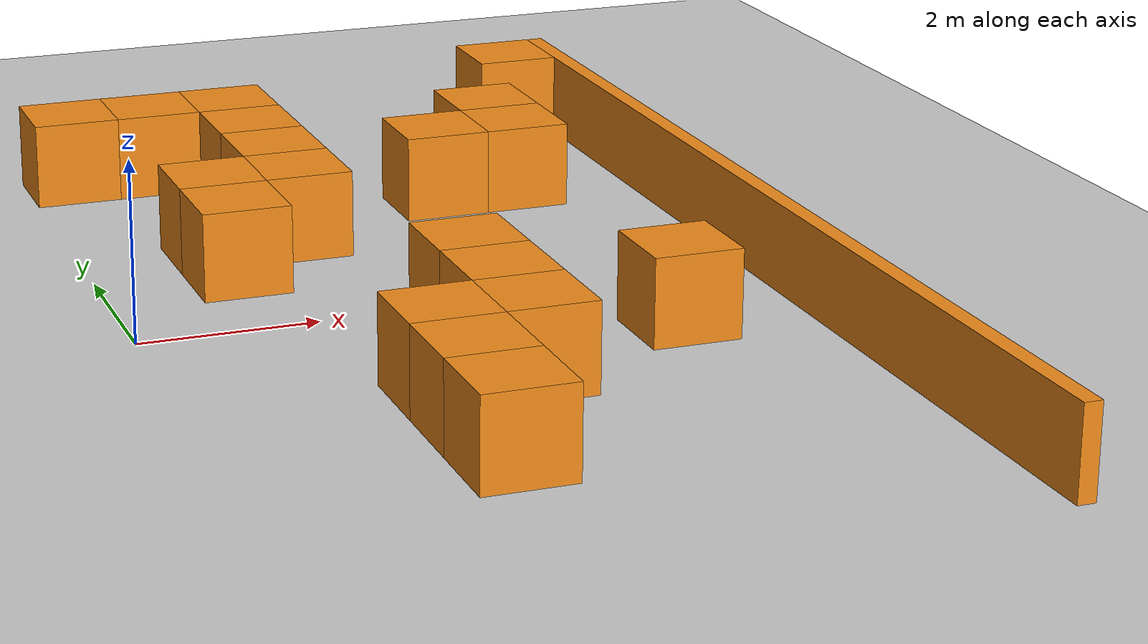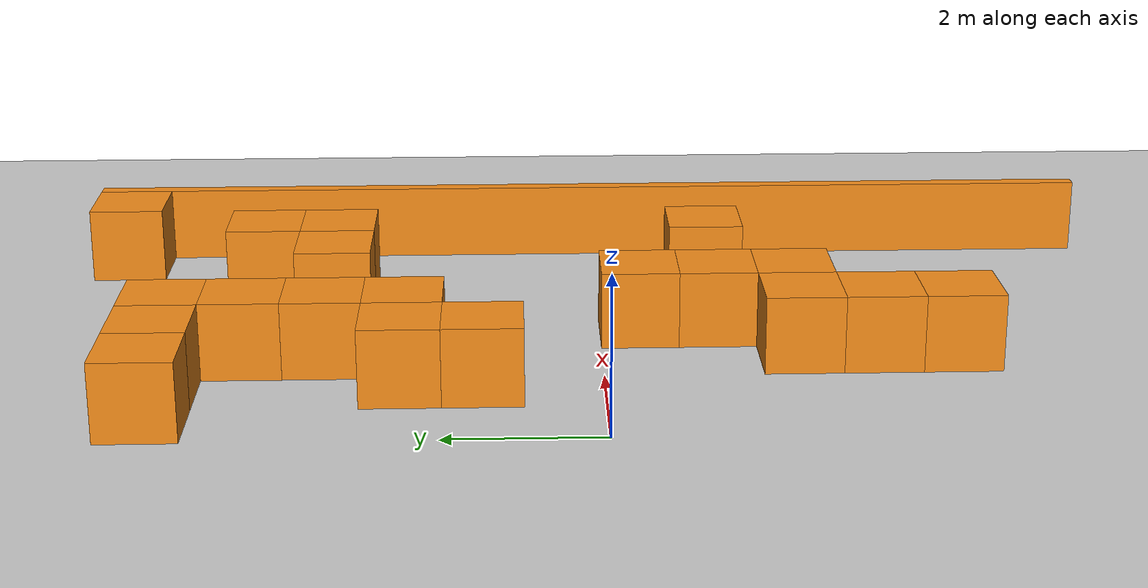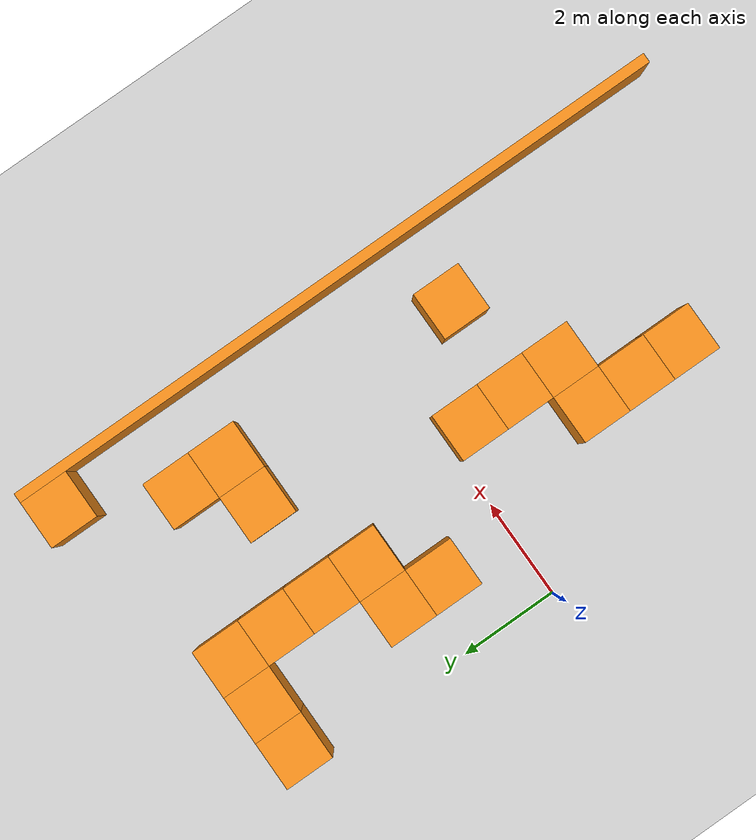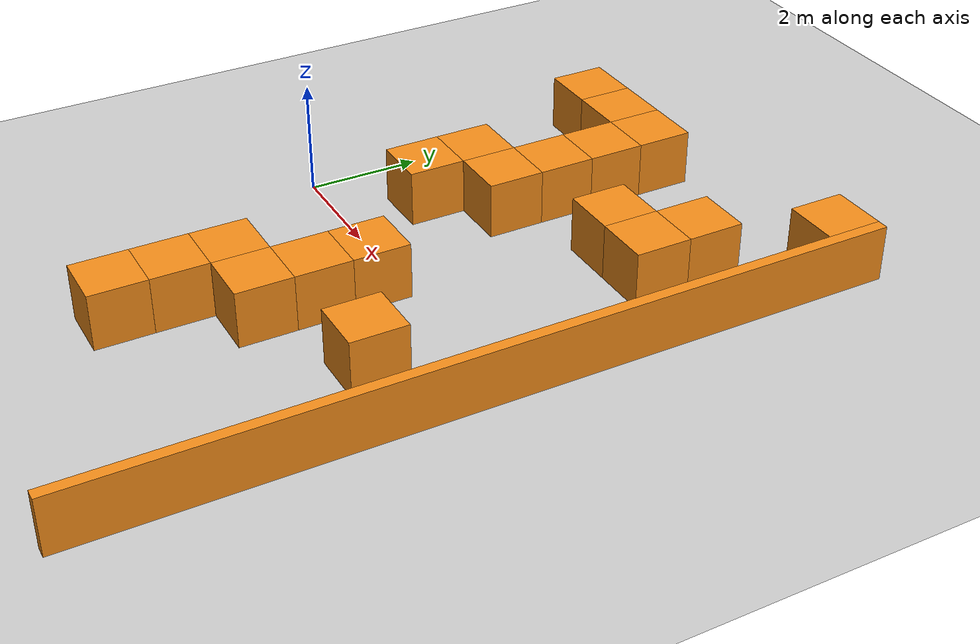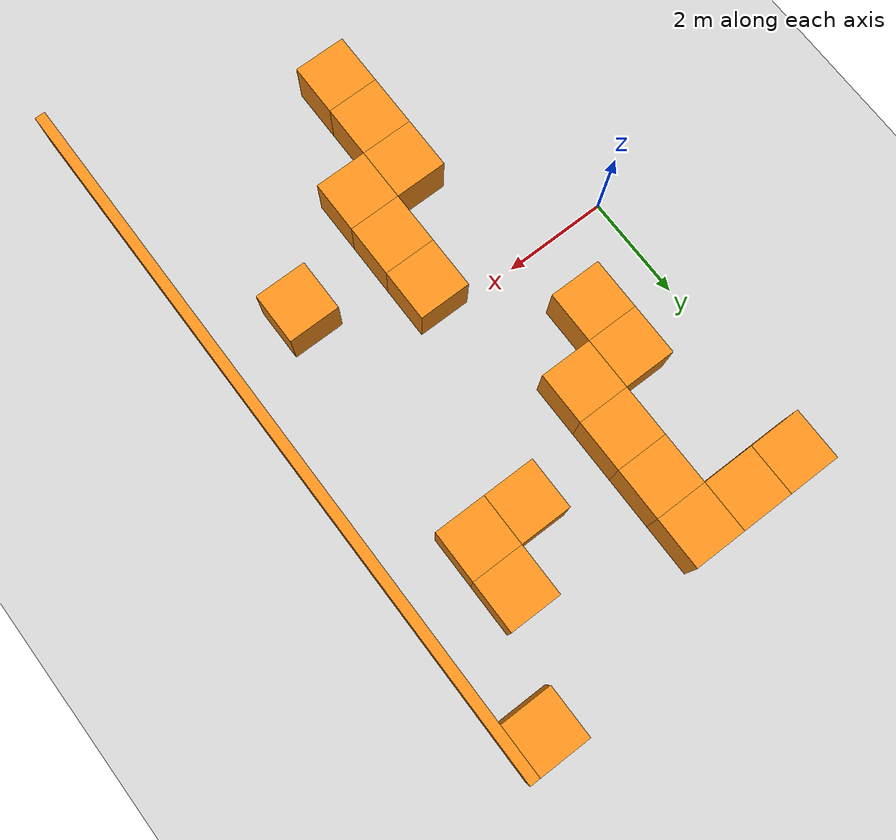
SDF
<sdf version="1.6">
 <world name="default">
  <model name="ground_plane">
   <static>1</static>
   <link name="link">
    <collision name="collision">
     <geometry><plane><normal>0 0 1</normal><size>50 50</size></plane></geometry>
     <surface><friction><ode><mu>100</mu><mu2>50</mu2></ode></friction></surface>
    </collision>
    <visual name="visual">
     <cast_shadows>0</cast_shadows>
     <geometry><plane><normal>0 0 1</normal><size>100 100</size></plane></geometry>
     <material>
      <script><name>Gazebo/Grey</name><uri>file://media/materials/scripts/gazebo.material</uri></script>
     </material>
    </visual>
    <velocity_decay><linear>0</linear><angular>0</angular></velocity_decay>
   </link>
  </model>
  <model name="unit_box">
   <pose>6.5 6.5 0.5 0 -0 0</pose>
   <static>1</static>
   <link name="link">
    <inertial>
     <mass>1</mass>
     <inertia>
      <ixx>0.166667</ixx>
      <ixy>0</ixy>
      <ixz>0</ixz>
      <iyy>0.166667</iyy>
      <iyz>0</iyz>
      <izz>0.166667</izz>
     </inertia>
    </inertial>
    <collision name="collision"><geometry><box><size>0.999998 1 1</size></box></geometry></collision>
    <visual name="visual">
     <geometry><box><size>0.999998 1 1</size></box></geometry>
     <material>
      <script><name>Gazebo/Orange</name><uri>file://media/materials/scripts/gazebo.material</uri></script>
     </material>
    </visual>
   </link>
  </model>
  <model name="outer_barrier_2">
   <pose>7.1 0 0.5 0 -0 0</pose>
   <static>1</static>
   <link name="link">
    <inertial>
     <mass>1</mass>
     <inertia>
      <ixx>0.166667</ixx>
      <ixy>0</ixy>
      <ixz>0</ixz>
      <iyy>0.166667</iyy>
      <iyz>0</iyz>
      <izz>0.166667</izz>
     </inertia>
    </inertial>
    <collision name="collision"><geometry><box><size>0.2 14 1</size></box></geometry></collision>
    <visual name="visual">
     <geometry><box><size>0.2 14 1</size></box></geometry>
     <material>
      <script><name>Gazebo/Orange</name><uri>file://media/materials/scripts/gazebo.material</uri></script>
     </material>
    </visual>
   </link>
  </model>
  <model name="box_01">
   <pose>5.5 3.5 0.5 0 -0 0</pose>
   <static>1</static>
   <link name="link">
    <inertial>
     <mass>1</mass>
     <inertia>
      <ixx>0.166667</ixx>
      <ixy>0</ixy>
      <ixz>0</ixz>
      <iyy>0.166667</iyy>
      <iyz>0</iyz>
      <izz>0.166667</izz>
     </inertia>
    </inertial>
    <collision name="collision"><geometry><box><size>0.999998 1 1</size></box></geometry></collision>
    <visual name="visual">
     <geometry><box><size>0.999998 1 1</size></box></geometry>
     <material>
      <script><name>Gazebo/Orange</name><uri>file://media/materials/scripts/gazebo.material</uri></script>
     </material>
    </visual>
   </link>
  </model>
  <model name="box_02">
   <pose>5.5 -1.5 0.5 0 -0 0</pose>
   <static>1</static>
   <link name="link">
    <inertial>
     <mass>1</mass>
     <inertia>
      <ixx>0.166667</ixx>
      <ixy>0</ixy>
      <ixz>0</ixz>
      <iyy>0.166667</iyy>
      <iyz>0</iyz>
      <izz>0.166667</izz>
     </inertia>
    </inertial>
    <collision name="collision"><geometry><box><size>0.999998 1 1</size></box></geometry></collision>
    <visual name="visual">
     <geometry><box><size>0.999998 1 1</size></box></geometry>
     <material>
      <script><name>Gazebo/Orange</name><uri>file://media/materials/scripts/gazebo.material</uri></script>
     </material>
    </visual>
   </link>
  </model>
  <model name="box_03">
   <pose>3.5 -0.5 0.5 0 -0 0</pose>
   <static>1</static>
   <link name="link">
    <inertial>
     <mass>1</mass>
     <inertia>
      <ixx>0.166667</ixx>
      <ixy>0</ixy>
      <ixz>0</ixz>
      <iyy>0.166667</iyy>
      <iyz>0</iyz>
      <izz>0.166667</izz>
     </inertia>
    </inertial>
    <collision name="collision"><geometry><box><size>0.999998 1 1</size></box></geometry></collision>
    <visual name="visual">
     <geometry><box><size>0.999998 1 1</size></box></geometry>
     <material>
      <script><name>Gazebo/Orange</name><uri>file://media/materials/scripts/gazebo.material</uri></script>
     </material>
    </visual>
   </link>
  </model>
  <model name="box_04">
   <pose>3.5 -1.5 0.5 0 -0 0</pose>
   <static>1</static>
   <link name="link">
    <inertial>
     <mass>1</mass>
     <inertia>
      <ixx>0.166667</ixx>
      <ixy>0</ixy>
      <ixz>0</ixz>
      <iyy>0.166667</iyy>
      <iyz>0</iyz>
      <izz>0.166667</izz>
     </inertia>
    </inertial>
    <collision name="collision"><geometry><box><size>0.999998 1 1</size></box></geometry></collision>
    <visual name="visual">
     <geometry><box><size>0.999998 1 1</size></box></geometry>
     <material>
      <script><name>Gazebo/Orange</name><uri>file://media/materials/scripts/gazebo.material</uri></script>
     </material>
    </visual>
   </link>
  </model>
  <model name="box_05">
   <pose>3.5 -2.5 0.5 0 -0 0</pose>
   <static>1</static>
   <link name="link">
    <inertial>
     <mass>1</mass>
     <inertia>
      <ixx>0.166667</ixx>
      <ixy>0</ixy>
      <ixz>0</ixz>
      <iyy>0.166667</iyy>
      <iyz>0</iyz>
      <izz>0.166667</izz>
     </inertia>
    </inertial>
    <collision name="collision"><geometry><box><size>0.999998 1 1</size></box></geometry></collision>
    <visual name="visual">
     <geometry><box><size>0.999998 1 1</size></box></geometry>
     <material>
      <script><name>Gazebo/Orange</name><uri>file://media/materials/scripts/gazebo.material</uri></script>
     </material>
    </visual>
   </link>
  </model>
  <model name="box_06">
   <pose>2.5 -2.5 0.5 0 -0 0</pose>
   <static>1</static>
   <link name="link">
    <inertial>
     <mass>1</mass>
     <inertia>
      <ixx>0.166667</ixx>
      <ixy>0</ixy>
      <ixz>0</ixz>
      <iyy>0.166667</iyy>
      <iyz>0</iyz>
      <izz>0.166667</izz>
     </inertia>
    </inertial>
    <collision name="collision"><geometry><box><size>0.999998 1 1</size></box></geometry></collision>
    <visual name="visual">
     <geometry><box><size>0.999998 1 1</size></box></geometry>
     <material>
      <script><name>Gazebo/Orange</name><uri>file://media/materials/scripts/gazebo.material</uri></script>
     </material>
    </visual>
   </link>
  </model>
  <model name="box_07">
   <pose>2.5 -3.5 0.5 0 -0 0</pose>
   <static>1</static>
   <link name="link">
    <inertial>
     <mass>1</mass>
     <inertia>
      <ixx>0.166667</ixx>
      <ixy>0</ixy>
      <ixz>0</ixz>
      <iyy>0.166667</iyy>
      <iyz>0</iyz>
      <izz>0.166667</izz>
     </inertia>
    </inertial>
    <collision name="collision"><geometry><box><size>0.999998 1 1</size></box></geometry></collision>
    <visual name="visual">
     <geometry><box><size>0.999998 1 1</size></box></geometry>
     <material>
      <script><name>Gazebo/Orange</name><uri>file://media/materials/scripts/gazebo.material</uri></script>
     </material>
    </visual>
   </link>
  </model>
  <model name="box_10">
   <pose>2.5 5.5 0.5 0 -0 0</pose>
   <static>1</static>
   <link name="link">
    <inertial>
     <mass>1</mass>
     <inertia>
      <ixx>0.166667</ixx>
      <ixy>0</ixy>
      <ixz>0</ixz>
      <iyy>0.166667</iyy>
      <iyz>0</iyz>
      <izz>0.166667</izz>
     </inertia>
    </inertial>
    <collision name="collision"><geometry><box><size>0.999998 1 1</size></box></geometry></collision>
    <visual name="visual">
     <geometry><box><size>0.999998 1 1</size></box></geometry>
     <material>
      <script><name>Gazebo/Orange</name><uri>file://media/materials/scripts/gazebo.material</uri></script>
     </material>
    </visual>
   </link>
  </model>
  <model name="box_11">
   <pose>1.5 2.5 0.5 0 -0 0</pose>
   <static>1</static>
   <link name="link">
    <inertial>
     <mass>1</mass>
     <inertia>
      <ixx>0.166667</ixx>
      <ixy>0</ixy>
      <ixz>0</ixz>
      <iyy>0.166667</iyy>
      <iyz>0</iyz>
      <izz>0.166667</izz>
     </inertia>
    </inertial>
    <collision name="collision"><geometry><box><size>0.999998 1 1</size></box></geometry></collision>
    <visual name="visual">
     <geometry><box><size>0.999998 1 1</size></box></geometry>
     <material>
      <script><name>Gazebo/Orange</name><uri>file://media/materials/scripts/gazebo.material</uri></script>
     </material>
    </visual>
   </link>
  </model>
  <model name="box_13">
   <pose>2.5 2.5 0.5 0 -0 0</pose>
   <static>1</static>
   <link name="link">
    <inertial>
     <mass>1</mass>
     <inertia>
      <ixx>0.166667</ixx>
      <ixy>0</ixy>
      <ixz>0</ixz>
      <iyy>0.166667</iyy>
      <iyz>0</iyz>
      <izz>0.166667</izz>
     </inertia>
    </inertial>
    <collision name="collision"><geometry><box><size>0.999998 1 1</size></box></geometry></collision>
    <visual name="visual">
     <geometry><box><size>0.999998 1 1</size></box></geometry>
     <material>
      <script><name>Gazebo/Orange</name><uri>file://media/materials/scripts/gazebo.material</uri></script>
     </material>
    </visual>
   </link>
  </model>
  <model name="box_17">
   <pose>1.5 1.5 0.5 0 -0 0</pose>
   <static>1</static>
   <link name="link">
    <inertial>
     <mass>1</mass>
     <inertia>
      <ixx>0.166667</ixx>
      <ixy>0</ixy>
      <ixz>0</ixz>
      <iyy>0.166667</iyy>
      <iyz>0</iyz>
      <izz>0.166667</izz>
     </inertia>
    </inertial>
    <collision name="collision"><geometry><box><size>0.999998 1 1</size></box></geometry></collision>
    <visual name="visual">
     <geometry><box><size>0.999998 1 1</size></box></geometry>
     <material>
      <script><name>Gazebo/Orange</name><uri>file://media/materials/scripts/gazebo.material</uri></script>
     </material>
    </visual>
   </link>
  </model>
  <model name="box_23">
   <pose>0.5 5.5 0.5 0 -0 0</pose>
   <static>1</static>
   <link name="link">
    <inertial>
     <mass>1</mass>
     <inertia>
      <ixx>0.166667</ixx>
      <ixy>0</ixy>
      <ixz>0</ixz>
      <iyy>0.166667</iyy>
      <iyz>0</iyz>
      <izz>0.166667</izz>
     </inertia>
    </inertial>
    <collision name="collision"><geometry><box><size>0.999998 1 1</size></box></geometry></collision>
    <visual name="visual">
     <geometry><box><size>0.999998 1 1</size></box></geometry>
     <material>
      <script><name>Gazebo/Orange</name><uri>file://media/materials/scripts/gazebo.material</uri></script>
     </material>
    </visual>
   </link>
  </model>
  <model name="box_24">
   <pose>1.5 5.5 0.5 0 -0 0</pose>
   <static>1</static>
   <link name="link">
    <inertial>
     <mass>1</mass>
     <inertia>
      <ixx>0.166667</ixx>
      <ixy>0</ixy>
      <ixz>0</ixz>
      <iyy>0.166667</iyy>
      <iyz>0</iyz>
      <izz>0.166667</izz>
     </inertia>
    </inertial>
    <collision name="collision"><geometry><box><size>0.999998 1 1</size></box></geometry></collision>
    <visual name="visual">
     <geometry><box><size>0.999998 1 1</size></box></geometry>
     <material>
      <script><name>Gazebo/Orange</name><uri>file://media/materials/scripts/gazebo.material</uri></script>
     </material>
    </visual>
   </link>
  </model>
  <model name="box_25">
   <pose>2.5 4.5 0.5 0 -0 0</pose>
   <static>1</static>
   <link name="link">
    <inertial>
     <mass>1</mass>
     <inertia>
      <ixx>0.166667</ixx>
      <ixy>0</ixy>
      <ixz>0</ixz>
      <iyy>0.166667</iyy>
      <iyz>0</iyz>
      <izz>0.166667</izz>
     </inertia>
    </inertial>
    <collision name="collision"><geometry><box><size>0.999998 1 1</size></box></geometry></collision>
    <visual name="visual">
     <geometry><box><size>0.999998 1 1</size></box></geometry>
     <material>
      <script><name>Gazebo/Orange</name><uri>file://media/materials/scripts/gazebo.material</uri></script>
     </material>
    </visual>
   </link>
  </model>
  <model name="box_26">
   <pose>2.5 3.5 0.5 0 -0 0</pose>
   <static>1</static>
   <link name="link">
    <inertial>
     <mass>1</mass>
     <inertia>
      <ixx>0.166667</ixx>
      <ixy>0</ixy>
      <ixz>0</ixz>
      <iyy>0.166667</iyy>
      <iyz>0</iyz>
      <izz>0.166667</izz>
     </inertia>
    </inertial>
    <collision name="collision"><geometry><box><size>0.999998 1 1</size></box></geometry></collision>
    <visual name="visual">
     <geometry><box><size>0.999998 1 1</size></box></geometry>
     <material>
      <script><name>Gazebo/Orange</name><uri>file://media/materials/scripts/gazebo.material</uri></script>
     </material>
    </visual>
   </link>
  </model>
  <model name="box_27">
   <pose>5.5 4.5 0.5 0 -0 0</pose>
   <static>1</static>
   <link name="link">
    <inertial>
     <mass>1</mass>
     <inertia>
      <ixx>0.166667</ixx>
      <ixy>0</ixy>
      <ixz>0</ixz>
      <iyy>0.166667</iyy>
      <iyz>0</iyz>
      <izz>0.166667</izz>
     </inertia>
    </inertial>
    <collision name="collision"><geometry><box><size>0.999998 1 1</size></box></geometry></collision>
    <visual name="visual">
     <geometry><box><size>0.999998 1 1</size></box></geometry>
     <material>
      <script><name>Gazebo/Orange</name><uri>file://media/materials/scripts/gazebo.material</uri></script>
     </material>
    </visual>
   </link>
  </model>
  <model name="box_28">
   <pose>4.5 3.5 0.5 0 -0 0</pose>
   <static>1</static>
   <link name="link">
    <inertial>
     <mass>1</mass>
     <inertia>
      <ixx>0.166667</ixx>
      <ixy>0</ixy>
      <ixz>0</ixz>
      <iyy>0.166667</iyy>
      <iyz>0</iyz>
      <izz>0.166667</izz>
     </inertia>
    </inertial>
    <collision name="collision"><geometry><box><size>0.999998 1 1</size></box></geometry></collision>
    <visual name="visual">
     <geometry><box><size>0.999998 1 1</size></box></geometry>
     <material>
      <script><name>Gazebo/Orange</name><uri>file://media/materials/scripts/gazebo.material</uri></script>
     </material>
    </visual>
   </link>
  </model>
  <model name="box_29">
   <pose>2.5 -4.5 0.5 0 -0 0</pose>
   <static>1</static>
   <link name="link">
    <inertial>
     <mass>1</mass>
     <inertia>
      <ixx>0.166667</ixx>
      <ixy>0</ixy>
      <ixz>0</ixz>
      <iyy>0.166667</iyy>
      <iyz>0</iyz>
      <izz>0.166667</izz>
     </inertia>
    </inertial>
    <collision name="collision"><geometry><box><size>0.999998 1 1</size></box></geometry></collision>
    <visual name="visual">
     <geometry><box><size>0.999998 1 1</size></box></geometry>
     <material>
      <script><name>Gazebo/Orange</name><uri>file://media/materials/scripts/gazebo.material</uri></script>
     </material>
    </visual>
   </link>
  </model>
 </world>
</sdf>
